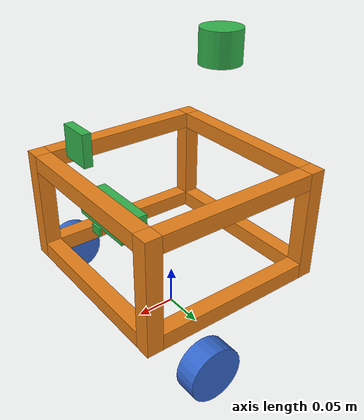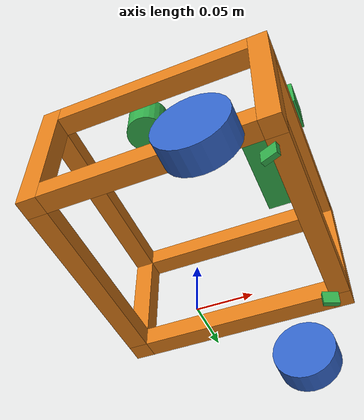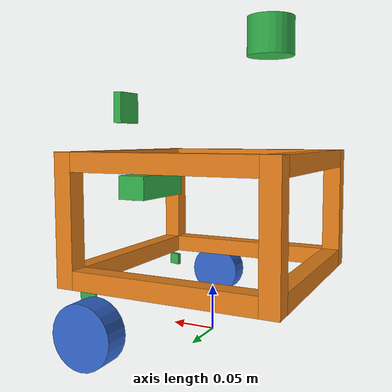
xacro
<?xml version="1.0"?>
<robot xmlns:xacro="http://www.ros.org/wiki/xacro" name="mobile_robot">

  <xacro:include filename="inertia.urdf.xacro"/>
  <xacro:include filename="properties.urdf.xacro"/>
  <xacro:include filename="ros2_control.urdf.xacro"/>

  <!-- ==================== Base Link ==================== -->
  <link name="base_footprint"/>

  <joint name="base_footprint_joint" type="fixed">
      <parent link="base_footprint"/>
      <child link="base_link"/>
      <origin xyz="0 0 0" rpy="0 0 0"/>
  </joint>

  <xacro:property name="t" value="0.02"/>

  <xacro:property name="z_center" value="${wheel_radius + wheel_z_offset + base_height/2}"/>

  <xacro:macro name="extrusion_beam" params="size_x size_y size_z pos_x pos_y pos_z">
    <visual>
      <origin xyz="${pos_x} ${pos_y} ${pos_z}" rpy="0 0 0"/>
      <geometry><box size="${size_x} ${size_y} ${size_z}"/></geometry>
      <material name="orange"/>
    </visual>
    <collision>
      <origin xyz="${pos_x} ${pos_y} ${pos_z}" rpy="0 0 0"/>
      <geometry><box size="${size_x} ${size_y} ${size_z}"/></geometry>
    </collision>
  </xacro:macro>

  <link name='base_link'>

    <xacro:extrusion_beam size_x="${t}" size_y="${t}" size_z="${base_height}"
                          pos_x="${base_length/2 - t/2}" pos_y="${base_width/2 - t/2}" pos_z="${z_center}"/>
    <xacro:extrusion_beam size_x="${t}" size_y="${t}" size_z="${base_height}"
                          pos_x="${base_length/2 - t/2}" pos_y="-${base_width/2 - t/2}" pos_z="${z_center}"/>
    <xacro:extrusion_beam size_x="${t}" size_y="${t}" size_z="${base_height}"
                          pos_x="-${base_length/2 - t/2}" pos_y="${base_width/2 - t/2}" pos_z="${z_center}"/>
    <xacro:extrusion_beam size_x="${t}" size_y="${t}" size_z="${base_height}"
                          pos_x="-${base_length/2 - t/2}" pos_y="-${base_width/2 - t/2}" pos_z="${z_center}"/>

    <xacro:extrusion_beam size_x="${base_length - 2*t}" size_y="${t}" size_z="${t}"
                          pos_x="0" pos_y="${base_width/2 - t/2}" pos_z="${z_center + base_height/2 - t/2}"/>
    <xacro:extrusion_beam size_x="${base_length - 2*t}" size_y="${t}" size_z="${t}"
                          pos_x="0" pos_y="-${base_width/2 - t/2}" pos_z="${z_center + base_height/2 - t/2}"/>
    <xacro:extrusion_beam size_x="${base_length - 2*t}" size_y="${t}" size_z="${t}"
                          pos_x="0" pos_y="${base_width/2 - t/2}" pos_z="${z_center - base_height/2 + t/2}"/>
    <xacro:extrusion_beam size_x="${base_length - 2*t}" size_y="${t}" size_z="${t}"
                          pos_x="0" pos_y="-${base_width/2 - t/2}" pos_z="${z_center - base_height/2 + t/2}"/>

    <xacro:extrusion_beam size_x="${t}" size_y="${base_width - 2*t}" size_z="${t}"
                          pos_x="${base_length/2 - t/2}" pos_y="0" pos_z="${z_center + base_height/2 - t/2}"/>
    <xacro:extrusion_beam size_x="${t}" size_y="${base_width - 2*t}" size_z="${t}"
                          pos_x="-${base_length/2 - t/2}" pos_y="0" pos_z="${z_center + base_height/2 - t/2}"/>
    <xacro:extrusion_beam size_x="${t}" size_y="${base_width - 2*t}" size_z="${t}"
                          pos_x="${base_length/2 - t/2}" pos_y="0" pos_z="${z_center - base_height/2 + t/2}"/>
    <xacro:extrusion_beam size_x="${t}" size_y="${base_width - 2*t}" size_z="${t}"
                          pos_x="-${base_length/2 - t/2}" pos_y="0" pos_z="${z_center - base_height/2 + t/2}"/>

    <inertial>
      <origin xyz="0 0 ${z_center}" rpy="0 0 0"/>
      <mass value="${mass_base}"/>
      <xacro:box_inertia mass="${mass_base}" x="${base_length}" y="${base_width}" z="${base_height}"/>
    </inertial>
  </link>

  <!-- ==================== Left Wheel ==================== -->
  <joint name='left_wheel_joint' type='continuous'>
    <parent link='base_link'/>
    <child link='left_wheel'/>
    <origin xyz="${base_length/2 - wheel_x_offset} ${base_width/2 + wheel_y_offset + wheel_thickness/2} ${wheel_radius}" rpy="0 0 0"/>
    <axis xyz="0 1 0"/>
  </joint>

  <link name='left_wheel'>
    <visual>
      <origin xyz="0 0 0" rpy="${-pi/2} 0 0"/>
      <geometry><cylinder radius="${wheel_radius}" length="${wheel_thickness}"/></geometry>
      <material name="blue"/>
    </visual>
    <collision>
      <origin xyz="0 0 0" rpy="${pi/2} 0 0"/>
      <geometry><cylinder radius="${wheel_radius}" length="${wheel_thickness}"/></geometry>
    </collision>
    <inertial>
      <origin xyz="0 0 0" rpy="${pi/2} 0 0"/>
      <mass value="${mass_wheel}"/>
      <xacro:cylinder_inertia mass="${mass_wheel}" radius="${wheel_radius}" length="${wheel_thickness}"/>
    </inertial>
  </link>

  <!-- ==================== Right Wheel ==================== -->
  <joint name='right_wheel_joint' type='continuous'>
    <parent link='base_link'/>
    <child link='right_wheel'/>
    <origin xyz="${base_length/2 - wheel_x_offset} ${-base_width/2 - wheel_y_offset - wheel_thickness/2} ${wheel_radius}" rpy="0 0 0"/>
    <axis xyz="0 1 0"/>
  </joint>

  <link name='right_wheel'>
    <visual>
      <origin xyz="0 0 0" rpy="${pi/2} 0 0"/>
      <geometry><cylinder radius="${wheel_radius}" length="${wheel_thickness}"/></geometry>
      <material name="blue"/>
    </visual>
    <collision>
      <origin xyz="0 0 0" rpy="${pi/2} 0 0"/>
      <geometry><cylinder radius="${wheel_radius}" length="${wheel_thickness}"/></geometry>
    </collision>
    <inertial>
      <origin xyz="0 0 0" rpy="${pi/2} 0 0"/>
      <mass value="${mass_wheel}"/>
      <xacro:cylinder_inertia mass="${mass_wheel}" radius="${wheel_radius}" length="${wheel_thickness}"/>
    </inertial>
  </link>

  <!-- ==================== Lidar ==================== -->

<joint name="lidar_joint" type="fixed">
  <parent link="base_link"/>
  <child link="lidar"/>
  <origin xyz="${-lidar_x_offset} 0 ${wheel_radius + wheel_z_offset + base_height + lidar_z_offset}" rpy="0 0 ${pi}"/>
</joint>

<link name="lidar">
  <visual>
    <origin xyz="0 0 0" rpy="0 0 0"/>
    <geometry><cylinder radius="${lidar_radius}" length="${lidar_height}"/></geometry>
    <material name="green"/>
  </visual>
   <collision>
      <origin xyz="0 0 0" rpy="0 0 0"/>
      <geometry><cylinder radius="${lidar_radius}" length="${lidar_height}"/></geometry>
    </collision>
    <inertial>
      <origin xyz="0 0 0" rpy="0 0 0"/>
      <mass value="0.01"/>
      <xacro:cylinder_inertia mass="0.01" radius="${lidar_radius}" length="${lidar_height}"/>
    </inertial>
</link>

<!-- ==================== Depth Camera ==================== -->

<joint name="camera_joint" type="fixed">
  <parent link="base_link"/>
  <child link="camera_link"/>
  <origin xyz="${base_length/2 - camera_x_offset} 0 ${wheel_radius + wheel_z_offset + base_height - camera_z_offset - camera_height/2}" rpy="0 0 0"/>
</joint>

<link name='camera_link'>
    <visual>
      <origin xyz="${-camera_length/2} 0 0" rpy="0 0 0"/>
      <geometry><box size="${camera_length} ${camera_width} ${camera_height}"/>
      </geometry>
      <material name="green"/>
    </visual>
    <collision>
      <origin xyz="${-camera_length/2} 0 0" rpy="0 0 0"/>
      <geometry><box size="${camera_length} ${camera_width} ${camera_height}"/>
      </geometry>
    </collision>
    <inertial>
      <origin xyz="${-camera_length/2} 0 0" rpy="0 0 0"/>
      <mass value="0.01"/>
      <xacro:box_inertia mass="0.01" x="${camera_length}" y="${camera_width}" z="${camera_height}"/>
    </inertial>
  </link>

<!-- ==================== Optical Frame ==================== -->
<joint name="camera_depth_optical_joint" type="fixed">
  <parent link="camera_link"/>
  <child link="camera_depth_optical_frame"/>
  <!-- Standard ROS optical convention: Z forward, X right, Y down. -->
  <origin xyz="0 0 0" rpy="${-pi/2} 0 ${-pi/2}"/>
</joint>

<link name="camera_depth_optical_frame"/>

<!-- ==================== TOF ==================== -->

<joint name="tof_joint" type="fixed">
  <parent link="base_link"/>
  <child link="tof_link"/>
  <origin xyz="${base_length/2 - camera_x_offset + tof_x_offset} 0 ${wheel_radius + wheel_z_offset + base_height - camera_z_offset - camera_height - tof_z_offset}" rpy="0 0 0"/>
</joint>

<link name='tof_link'>
    <visual>
      <origin xyz="${-tof_length/2} 0 0" rpy="0 0 0"/>
      <geometry><box size="${tof_length} ${tof_width} ${tof_height}"/>
      </geometry>
      <material name="green"/>
    </visual>
    <collision>
      <origin xyz="${-tof_length/2} 0 0" rpy="0 0 0"/>
      <geometry><box size="${tof_length} ${tof_width} ${tof_height}"/>
      </geometry>
    </collision>
    <inertial>
      <origin xyz="${-tof_length/2} 0 0" rpy="0 0 0"/>
      <mass value="0.01"/>
      <xacro:box_inertia mass="0.01" x="${tof_length}" y="${tof_width}" z="${tof_height}"/>
    </inertial>
</link>

<!-- ==================== IMU ==================== -->
<joint name="imu_joint" type="fixed">
  <parent link="base_link"/>
  <child link="imu_link"/>
  <origin xyz="0 0 ${wheel_radius + wheel_z_offset + imu_z_offset}" rpy="0 0 0"/>
</joint>

<link name="imu_link"/>

<!-- ==================== Range Left ==================== -->
<joint name="range_left_joint" type="fixed">
  <parent link="base_link"/>
  <child link="range_left_link"/>
  <origin xyz="${base_length/2 - range_x_offset} ${side_range_y_offset} ${wheel_radius + wheel_z_offset - range_z_offset}" rpy="0 0 ${range_z_angle}"/>
</joint>

<link name="range_left_link">
  <visual>
    <origin xyz="0 0 0" rpy="0 0 0"/>
    <geometry><box size="${range_length} ${range_width} ${range_height}"/>
    </geometry>
    <material name="green"/>
  </visual>
  <collision>
    <origin xyz="0 0 0" rpy="0 0 0"/>
    <geometry><box size="${range_length} ${range_width} ${range_height}"/>
    </geometry>
  </collision>
  <inertial>
    <mass value="0.01"/>
    <xacro:box_inertia mass="0.01" x="${range_length}" y="${range_width}" z="${range_height}"/>
  </inertial>
</link>

<!-- ==================== Range Right ==================== -->
<joint name="range_right_joint" type="fixed">
  <parent link="base_link"/>
  <child link="range_right_link"/>
  <origin xyz="${base_length/2 - range_x_offset} ${-side_range_y_offset} ${wheel_radius + wheel_z_offset - range_z_offset}" rpy="0 0 ${-range_z_angle}"/>
</joint>

<link name="range_right_link">
  <visual>
    <origin xyz="0 0 0" rpy="0 0 0"/>
    <geometry><box size="${range_length} ${range_width} ${range_height}"/>
    </geometry>
    <material name="green"/>
  </visual>
  <collision>
    <origin xyz="0 0 0" rpy="0 0 0"/>
    <geometry><box size="${range_length} ${range_width} ${range_height}"/>
    </geometry>
  </collision>
  <inertial>
    <mass value="0.01"/>
    <xacro:box_inertia mass="0.01" x="${range_length}" y="${range_width}" z="${range_height}"/>
  </inertial>
</link>

<!-- ==================== RGB Camera ==================== -->

<joint name="rgb_camera_joint" type="fixed">
  <parent link="base_link"/>
  <child link="rgb_camera_link"/>
  <origin xyz="${base_length/2 - rgb_camera_x_offset} 0 ${wheel_radius + wheel_z_offset + base_height + rgb_camera_z_offset}" rpy="0 0 0"/>
</joint>

<link name='rgb_camera_link'>
    <visual>
      <origin xyz="${rgb_camera_length/2} 0 0" rpy="0 0 0"/>
      <geometry><box size="${rgb_camera_length} ${rgb_camera_width} ${rgb_camera_height}"/>
      </geometry>
      <material name="green"/>
    </visual>
    <collision>
      <origin xyz="${rgb_camera_length/2} 0 0" rpy="0 0 0"/>
      <geometry><box size="${rgb_camera_length} ${rgb_camera_width} ${rgb_camera_height}"/>
      </geometry>
    </collision>
    <inertial>
      <origin xyz="${rgb_camera_length/2} 0 0" rpy="0 0 0"/>
      <mass value="0.01"/>
      <xacro:box_inertia mass="0.01" x="${rgb_camera_length}" y="${rgb_camera_width}" z="${rgb_camera_height}"/>
    </inertial>
</link>

</robot>

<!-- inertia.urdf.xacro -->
<robot xmlns:xacro="http://www.ros.org/wiki/xacro">

  <xacro:macro name="box_inertia" params="mass x y z">
    <inertia ixx="${mass * (y*y + z*z) / 12}"
             ixy="0" ixz="0"
             iyy="${mass * (x*x + z*z) / 12}"
             iyz="0"
             izz="${mass * (x*x + y*y) / 12}"/>
  </xacro:macro>

  <xacro:macro name="cylinder_inertia" params="mass radius length">
    <inertia ixx="${mass * (3*radius*radius + length*length) / 12}"
             ixy="0" ixz="0"
             iyy="${mass * (3*radius*radius + length*length) / 12}"
             iyz="0"
             izz="${mass * radius * radius / 2}"/>
  </xacro:macro>
  <xacro:macro name="sphere_inertia" params="mass radius">
    <inertia ixx="${mass * 2 * radius * radius / 5}"
             ixy="0" ixz="0"
             iyy="${mass * 2 * radius * radius / 5}"
             iyz="0"
             izz="${mass * 2 * radius * radius / 5}"/>
  </xacro:macro>

</robot>

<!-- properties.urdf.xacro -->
<robot xmlns:xacro="http://www.ros.org/wiki/xacro">

  <!-- Dimensions -->

  <!-- Base  -->

  <xacro:property name="base_length"   value="0.24"/>
  <xacro:property name="base_width"   value="0.24"/>
  <xacro:property name="base_height"   value="0.14"/>
  <xacro:property name="mass_base" value="4"/>

  <!-- Wheels -->

  <xacro:property name="wheel_radius" value="0.0325"/>
  <xacro:property name="wheel_thickness" value="0.026"/>
  <xacro:property name="wheel_z_offset" value="0.0305"/> <!-- Wheel center to Base bottom -->
  <xacro:property name="wheel_y_offset" value="0.012"/> <!-- Wheel inner to Base outer -->
  <xacro:property name="wheel_x_offset" value="0.06"/> <!-- Wheel center to Base front -->
  <xacro:property name="mass_wheel" value="0.1"/>

  <!-- Lidar -->

  <xacro:property name="lidar_height" value="0.04"/>
  <xacro:property name="lidar_radius" value="0.025"/>
  <xacro:property name="lidar_z_offset" value="0.119"/> <!-- Lidar center to Base upper -->
  <xacro:property name="lidar_x_offset" value="0.067"/> <!-- Lidar center to Base center -->

  <!-- Depth Camera -->
  <xacro:property name="camera_length" value="0.033"/>
  <xacro:property name="camera_width" value="0.085"/>
  <xacro:property name="camera_height" value="0.027"/>
  <xacro:property name="camera_z_offset" value="0.028"/> <!-- Camera upper to Base upper -->
  <xacro:property name="camera_x_offset" value="0.023"/> <!-- Camera front to Base front -->

  <!-- RGB Camera -->
  <xacro:property name="rgb_camera_length" value="0.01"/>
  <xacro:property name="rgb_camera_width" value="0.036"/>
  <xacro:property name="rgb_camera_height" value="0.036"/>
  <xacro:property name="rgb_camera_z_offset" value="0.05"/> <!-- Camera center to Base upper -->
  <xacro:property name="rgb_camera_x_offset" value="0.01"/> <!-- Camera center to Base front -->

  <!-- TOF -->
  <xacro:property name="tof_length" value="0.003"/>
  <xacro:property name="tof_width" value="0.015"/>
  <xacro:property name="tof_height" value="0.01"/>
  <xacro:property name="tof_z_offset" value="0.0"/> <!-- TOF center to camera bottom -->
  <xacro:property name="tof_x_offset" value="0.006"/> <!-- TOF centor to camera center -->

  <!-- IMU -->
  <xacro:property name="imu_z_offset" value="0.0"/> <!-- MPU to Base bottom -->

  <!-- Range -->
  <xacro:property name="range_x_offset" value="0.019"/> <!-- Range center to Base front -->
  <xacro:property name="side_range_y_offset" value="0.093"/> <!-- Side range center to Base center -->
  <xacro:property name="range_z_offset" value="0.01"/> <!-- Range center to Base bottom -->

  <xacro:property name="range_z_angle" value="0.3554"/> <!-- Side range angle to Base front -->
  <xacro:property name="range_length" value="0.016"/>
  <xacro:property name="range_width" value="0.005"/>
  <xacro:property name="range_height" value="0.014"/>

  <!-- Materials -->
  <material name="blue">
    <color rgba="0.2 0.4 0.8 1.0"/>
  </material>

  <material name="green">
    <color rgba="0.2 0.7 0.3 1.0"/>
  </material>

  <material name="orange">
    <color rgba="0.9 0.5 0.1 1.0"/>
  </material>

  <material name="red">
    <color rgba="0.8 0.1 0.1 1.0"/>
  </material>

</robot>
